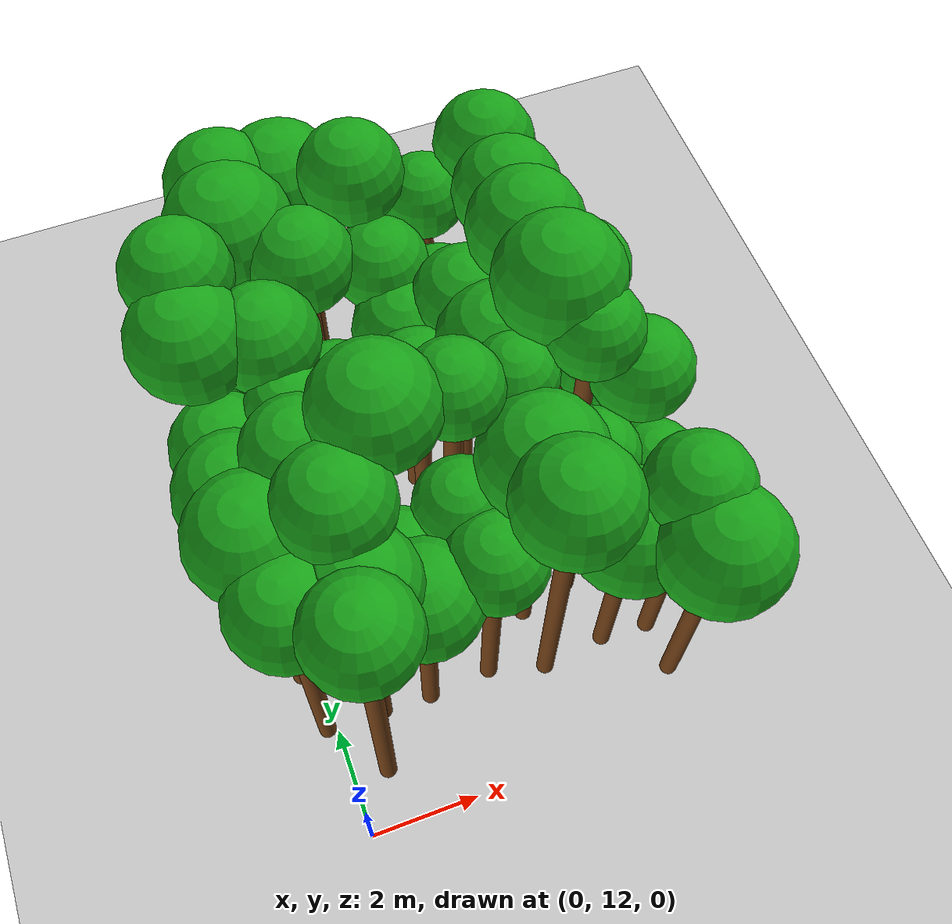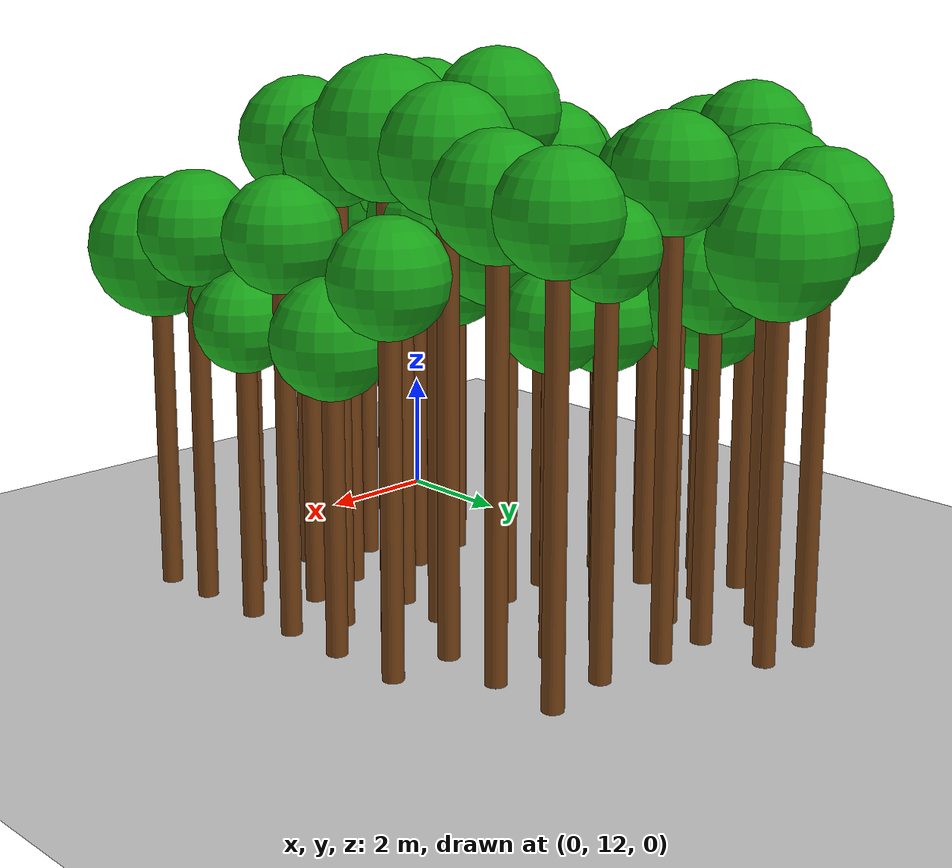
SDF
<sdf version="1.6">
 <world name="forest_world">
  <include><uri>model://sun</uri></include>
  <include><uri>model://ground_plane</uri></include>
  <model name="tree_1511_trunk">
   <static>true</static>
   <pose>-0.17 14.11 2.80 0 0 0</pose>
   <link name="link">
    <collision name="collision">
     <geometry><cylinder><radius>0.16</radius><length>5.60</length></cylinder></geometry>
    </collision>
    <visual name="visual">
     <geometry><cylinder><radius>0.16</radius><length>5.60</length></cylinder></geometry>
     <material><ambient>0.35 0.20 0.05 1</ambient><diffuse>0.45 0.25 0.08 1</diffuse></material>
    </visual>
   </link>
  </model>
  <model name="tree_1511_leaf">
   <static>true</static>
   <pose>-0.17 14.11 6.17 0 0 0</pose>
   <link name="link">
    <collision name="collision"><geometry><sphere><radius>0.94</radius></sphere></geometry></collision>
    <visual name="visual">
     <geometry><sphere><radius>0.94</radius></sphere></geometry>
     <material><ambient>0.05 0.45 0.05 1</ambient><diffuse>0.10 0.65 0.10 1</diffuse></material>
    </visual>
   </link>
  </model>
  <model name="tree_1512_trunk">
   <static>true</static>
   <pose>-0.33 15.25 2.86 0 0 0</pose>
   <link name="link">
    <collision name="collision">
     <geometry><cylinder><radius>0.16</radius><length>5.71</length></cylinder></geometry>
    </collision>
    <visual name="visual">
     <geometry><cylinder><radius>0.16</radius><length>5.71</length></cylinder></geometry>
     <material><ambient>0.35 0.20 0.05 1</ambient><diffuse>0.45 0.25 0.08 1</diffuse></material>
    </visual>
   </link>
  </model>
  <model name="tree_1512_leaf">
   <static>true</static>
   <pose>-0.33 15.25 6.33 0 0 0</pose>
   <link name="link">
    <collision name="collision"><geometry><sphere><radius>1.03</radius></sphere></geometry></collision>
    <visual name="visual">
     <geometry><sphere><radius>1.03</radius></sphere></geometry>
     <material><ambient>0.05 0.45 0.05 1</ambient><diffuse>0.10 0.65 0.10 1</diffuse></material>
    </visual>
   </link>
  </model>
  <model name="tree_1513_trunk">
   <static>true</static>
   <pose>-0.34 16.30 2.58 0 0 0</pose>
   <link name="link">
    <collision name="collision">
     <geometry><cylinder><radius>0.16</radius><length>5.17</length></cylinder></geometry>
    </collision>
    <visual name="visual">
     <geometry><cylinder><radius>0.16</radius><length>5.17</length></cylinder></geometry>
     <material><ambient>0.35 0.20 0.05 1</ambient><diffuse>0.45 0.25 0.08 1</diffuse></material>
    </visual>
   </link>
  </model>
  <model name="tree_1513_leaf">
   <static>true</static>
   <pose>-0.34 16.30 5.77 0 0 0</pose>
   <link name="link">
    <collision name="collision"><geometry><sphere><radius>1.00</radius></sphere></geometry></collision>
    <visual name="visual">
     <geometry><sphere><radius>1.00</radius></sphere></geometry>
     <material><ambient>0.05 0.45 0.05 1</ambient><diffuse>0.10 0.65 0.10 1</diffuse></material>
    </visual>
   </link>
  </model>
  <model name="tree_1514_trunk">
   <static>true</static>
   <pose>-0.30 17.37 2.39 0 0 0</pose>
   <link name="link">
    <collision name="collision">
     <geometry><cylinder><radius>0.16</radius><length>4.79</length></cylinder></geometry>
    </collision>
    <visual name="visual">
     <geometry><cylinder><radius>0.16</radius><length>4.79</length></cylinder></geometry>
     <material><ambient>0.35 0.20 0.05 1</ambient><diffuse>0.45 0.25 0.08 1</diffuse></material>
    </visual>
   </link>
  </model>
  <model name="tree_1514_leaf">
   <static>true</static>
   <pose>-0.30 17.37 5.33 0 0 0</pose>
   <link name="link">
    <collision name="collision"><geometry><sphere><radius>0.91</radius></sphere></geometry></collision>
    <visual name="visual">
     <geometry><sphere><radius>0.91</radius></sphere></geometry>
     <material><ambient>0.05 0.45 0.05 1</ambient><diffuse>0.10 0.65 0.10 1</diffuse></material>
    </visual>
   </link>
  </model>
  <model name="tree_1515_trunk">
   <static>true</static>
   <pose>-0.32 18.52 3.08 0 0 0</pose>
   <link name="link">
    <collision name="collision">
     <geometry><cylinder><radius>0.16</radius><length>6.16</length></cylinder></geometry>
    </collision>
    <visual name="visual">
     <geometry><cylinder><radius>0.16</radius><length>6.16</length></cylinder></geometry>
     <material><ambient>0.35 0.20 0.05 1</ambient><diffuse>0.45 0.25 0.08 1</diffuse></material>
    </visual>
   </link>
  </model>
  <model name="tree_1515_leaf">
   <static>true</static>
   <pose>-0.32 18.52 6.76 0 0 0</pose>
   <link name="link">
    <collision name="collision"><geometry><sphere><radius>1.00</radius></sphere></geometry></collision>
    <visual name="visual">
     <geometry><sphere><radius>1.00</radius></sphere></geometry>
     <material><ambient>0.05 0.45 0.05 1</ambient><diffuse>0.10 0.65 0.10 1</diffuse></material>
    </visual>
   </link>
  </model>
  <model name="tree_1516_trunk">
   <static>true</static>
   <pose>-0.20 19.46 3.32 0 0 0</pose>
   <link name="link">
    <collision name="collision">
     <geometry><cylinder><radius>0.16</radius><length>6.64</length></cylinder></geometry>
    </collision>
    <visual name="visual">
     <geometry><cylinder><radius>0.16</radius><length>6.64</length></cylinder></geometry>
     <material><ambient>0.35 0.20 0.05 1</ambient><diffuse>0.45 0.25 0.08 1</diffuse></material>
    </visual>
   </link>
  </model>
  <model name="tree_1516_leaf">
   <static>true</static>
   <pose>-0.20 19.46 7.17 0 0 0</pose>
   <link name="link">
    <collision name="collision"><geometry><sphere><radius>0.89</radius></sphere></geometry></collision>
    <visual name="visual">
     <geometry><sphere><radius>0.89</radius></sphere></geometry>
     <material><ambient>0.05 0.45 0.05 1</ambient><diffuse>0.10 0.65 0.10 1</diffuse></material>
    </visual>
   </link>
  </model>
  <model name="tree_1560_trunk">
   <static>true</static>
   <pose>0.64 13.03 3.34 0 0 0</pose>
   <link name="link">
    <collision name="collision">
     <geometry><cylinder><radius>0.16</radius><length>6.67</length></cylinder></geometry>
    </collision>
    <visual name="visual">
     <geometry><cylinder><radius>0.16</radius><length>6.67</length></cylinder></geometry>
     <material><ambient>0.35 0.20 0.05 1</ambient><diffuse>0.45 0.25 0.08 1</diffuse></material>
    </visual>
   </link>
  </model>
  <model name="tree_1560_leaf">
   <static>true</static>
   <pose>0.64 13.03 7.20 0 0 0</pose>
   <link name="link">
    <collision name="collision"><geometry><sphere><radius>0.88</radius></sphere></geometry></collision>
    <visual name="visual">
     <geometry><sphere><radius>0.88</radius></sphere></geometry>
     <material><ambient>0.05 0.45 0.05 1</ambient><diffuse>0.10 0.65 0.10 1</diffuse></material>
    </visual>
   </link>
  </model>
  <model name="tree_1561_trunk">
   <static>true</static>
   <pose>0.91 14.09 2.83 0 0 0</pose>
   <link name="link">
    <collision name="collision">
     <geometry><cylinder><radius>0.16</radius><length>5.66</length></cylinder></geometry>
    </collision>
    <visual name="visual">
     <geometry><cylinder><radius>0.16</radius><length>5.66</length></cylinder></geometry>
     <material><ambient>0.35 0.20 0.05 1</ambient><diffuse>0.45 0.25 0.08 1</diffuse></material>
    </visual>
   </link>
  </model>
  <model name="tree_1561_leaf">
   <static>true</static>
   <pose>0.91 14.09 6.22 0 0 0</pose>
   <link name="link">
    <collision name="collision"><geometry><sphere><radius>0.93</radius></sphere></geometry></collision>
    <visual name="visual">
     <geometry><sphere><radius>0.93</radius></sphere></geometry>
     <material><ambient>0.05 0.45 0.05 1</ambient><diffuse>0.10 0.65 0.10 1</diffuse></material>
    </visual>
   </link>
  </model>
  <model name="tree_1562_trunk">
   <static>true</static>
   <pose>0.89 15.01 3.25 0 0 0</pose>
   <link name="link">
    <collision name="collision">
     <geometry><cylinder><radius>0.16</radius><length>6.50</length></cylinder></geometry>
    </collision>
    <visual name="visual">
     <geometry><cylinder><radius>0.16</radius><length>6.50</length></cylinder></geometry>
     <material><ambient>0.35 0.20 0.05 1</ambient><diffuse>0.45 0.25 0.08 1</diffuse></material>
    </visual>
   </link>
  </model>
  <model name="tree_1562_leaf">
   <static>true</static>
   <pose>0.89 15.01 7.05 0 0 0</pose>
   <link name="link">
    <collision name="collision"><geometry><sphere><radius>0.92</radius></sphere></geometry></collision>
    <visual name="visual">
     <geometry><sphere><radius>0.92</radius></sphere></geometry>
     <material><ambient>0.05 0.45 0.05 1</ambient><diffuse>0.10 0.65 0.10 1</diffuse></material>
    </visual>
   </link>
  </model>
  <model name="tree_1563_trunk">
   <static>true</static>
   <pose>0.69 16.14 3.06 0 0 0</pose>
   <link name="link">
    <collision name="collision">
     <geometry><cylinder><radius>0.16</radius><length>6.12</length></cylinder></geometry>
    </collision>
    <visual name="visual">
     <geometry><cylinder><radius>0.16</radius><length>6.12</length></cylinder></geometry>
     <material><ambient>0.35 0.20 0.05 1</ambient><diffuse>0.45 0.25 0.08 1</diffuse></material>
    </visual>
   </link>
  </model>
  <model name="tree_1563_leaf">
   <static>true</static>
   <pose>0.69 16.14 6.66 0 0 0</pose>
   <link name="link">
    <collision name="collision"><geometry><sphere><radius>0.90</radius></sphere></geometry></collision>
    <visual name="visual">
     <geometry><sphere><radius>0.90</radius></sphere></geometry>
     <material><ambient>0.05 0.45 0.05 1</ambient><diffuse>0.10 0.65 0.10 1</diffuse></material>
    </visual>
   </link>
  </model>
  <model name="tree_1564_trunk">
   <static>true</static>
   <pose>0.82 17.37 2.78 0 0 0</pose>
   <link name="link">
    <collision name="collision">
     <geometry><cylinder><radius>0.16</radius><length>5.56</length></cylinder></geometry>
    </collision>
    <visual name="visual">
     <geometry><cylinder><radius>0.16</radius><length>5.56</length></cylinder></geometry>
     <material><ambient>0.35 0.20 0.05 1</ambient><diffuse>0.45 0.25 0.08 1</diffuse></material>
    </visual>
   </link>
  </model>
  <model name="tree_1564_leaf">
   <static>true</static>
   <pose>0.82 17.37 5.99 0 0 0</pose>
   <link name="link">
    <collision name="collision"><geometry><sphere><radius>0.71</radius></sphere></geometry></collision>
    <visual name="visual">
     <geometry><sphere><radius>0.71</radius></sphere></geometry>
     <material><ambient>0.05 0.45 0.05 1</ambient><diffuse>0.10 0.65 0.10 1</diffuse></material>
    </visual>
   </link>
  </model>
  <model name="tree_1565_trunk">
   <static>true</static>
   <pose>0.76 18.32 3.00 0 0 0</pose>
   <link name="link">
    <collision name="collision">
     <geometry><cylinder><radius>0.16</radius><length>5.99</length></cylinder></geometry>
    </collision>
    <visual name="visual">
     <geometry><cylinder><radius>0.16</radius><length>5.99</length></cylinder></geometry>
     <material><ambient>0.35 0.20 0.05 1</ambient><diffuse>0.45 0.25 0.08 1</diffuse></material>
    </visual>
   </link>
  </model>
  <model name="tree_1565_leaf">
   <static>true</static>
   <pose>0.76 18.32 6.53 0 0 0</pose>
   <link name="link">
    <collision name="collision"><geometry><sphere><radius>0.90</radius></sphere></geometry></collision>
    <visual name="visual">
     <geometry><sphere><radius>0.90</radius></sphere></geometry>
     <material><ambient>0.05 0.45 0.05 1</ambient><diffuse>0.10 0.65 0.10 1</diffuse></material>
    </visual>
   </link>
  </model>
  <model name="tree_1566_trunk">
   <static>true</static>
   <pose>0.67 19.36 2.07 0 0 0</pose>
   <link name="link">
    <collision name="collision">
     <geometry><cylinder><radius>0.16</radius><length>4.13</length></cylinder></geometry>
    </collision>
    <visual name="visual">
     <geometry><cylinder><radius>0.16</radius><length>4.13</length></cylinder></geometry>
     <material><ambient>0.35 0.20 0.05 1</ambient><diffuse>0.45 0.25 0.08 1</diffuse></material>
    </visual>
   </link>
  </model>
  <model name="tree_1566_leaf">
   <static>true</static>
   <pose>0.67 19.36 4.74 0 0 0</pose>
   <link name="link">
    <collision name="collision"><geometry><sphere><radius>1.02</radius></sphere></geometry></collision>
    <visual name="visual">
     <geometry><sphere><radius>1.02</radius></sphere></geometry>
     <material><ambient>0.05 0.45 0.05 1</ambient><diffuse>0.10 0.65 0.10 1</diffuse></material>
    </visual>
   </link>
  </model>
  <model name="tree_1567_trunk">
   <static>true</static>
   <pose>0.82 20.61 2.93 0 0 0</pose>
   <link name="link">
    <collision name="collision">
     <geometry><cylinder><radius>0.16</radius><length>5.85</length></cylinder></geometry>
    </collision>
    <visual name="visual">
     <geometry><cylinder><radius>0.16</radius><length>5.85</length></cylinder></geometry>
     <material><ambient>0.35 0.20 0.05 1</ambient><diffuse>0.45 0.25 0.08 1</diffuse></material>
    </visual>
   </link>
  </model>
  <model name="tree_1567_leaf">
   <static>true</static>
   <pose>0.82 20.61 6.50 0 0 0</pose>
   <link name="link">
    <collision name="collision"><geometry><sphere><radius>1.08</radius></sphere></geometry></collision>
    <visual name="visual">
     <geometry><sphere><radius>1.08</radius></sphere></geometry>
     <material><ambient>0.05 0.45 0.05 1</ambient><diffuse>0.10 0.65 0.10 1</diffuse></material>
    </visual>
   </link>
  </model>
  <model name="tree_1568_trunk">
   <static>true</static>
   <pose>0.93 21.59 2.91 0 0 0</pose>
   <link name="link">
    <collision name="collision">
     <geometry><cylinder><radius>0.16</radius><length>5.81</length></cylinder></geometry>
    </collision>
    <visual name="visual">
     <geometry><cylinder><radius>0.16</radius><length>5.81</length></cylinder></geometry>
     <material><ambient>0.35 0.20 0.05 1</ambient><diffuse>0.45 0.25 0.08 1</diffuse></material>
    </visual>
   </link>
  </model>
  <model name="tree_1568_leaf">
   <static>true</static>
   <pose>0.93 21.59 6.39 0 0 0</pose>
   <link name="link">
    <collision name="collision"><geometry><sphere><radius>0.96</radius></sphere></geometry></collision>
    <visual name="visual">
     <geometry><sphere><radius>0.96</radius></sphere></geometry>
     <material><ambient>0.05 0.45 0.05 1</ambient><diffuse>0.10 0.65 0.10 1</diffuse></material>
    </visual>
   </link>
  </model>
  <model name="tree_1612_trunk">
   <static>true</static>
   <pose>1.83 14.07 2.15 0 0 0</pose>
   <link name="link">
    <collision name="collision">
     <geometry><cylinder><radius>0.16</radius><length>4.30</length></cylinder></geometry>
    </collision>
    <visual name="visual">
     <geometry><cylinder><radius>0.16</radius><length>4.30</length></cylinder></geometry>
     <material><ambient>0.35 0.20 0.05 1</ambient><diffuse>0.45 0.25 0.08 1</diffuse></material>
    </visual>
   </link>
  </model>
  <model name="tree_1612_leaf">
   <static>true</static>
   <pose>1.83 14.07 4.88 0 0 0</pose>
   <link name="link">
    <collision name="collision"><geometry><sphere><radius>0.98</radius></sphere></geometry></collision>
    <visual name="visual">
     <geometry><sphere><radius>0.98</radius></sphere></geometry>
     <material><ambient>0.05 0.45 0.05 1</ambient><diffuse>0.10 0.65 0.10 1</diffuse></material>
    </visual>
   </link>
  </model>
  <model name="tree_1613_trunk">
   <static>true</static>
   <pose>1.77 14.99 2.08 0 0 0</pose>
   <link name="link">
    <collision name="collision">
     <geometry><cylinder><radius>0.16</radius><length>4.17</length></cylinder></geometry>
    </collision>
    <visual name="visual">
     <geometry><cylinder><radius>0.16</radius><length>4.17</length></cylinder></geometry>
     <material><ambient>0.35 0.20 0.05 1</ambient><diffuse>0.45 0.25 0.08 1</diffuse></material>
    </visual>
   </link>
  </model>
  <model name="tree_1613_leaf">
   <static>true</static>
   <pose>1.77 14.99 4.63 0 0 0</pose>
   <link name="link">
    <collision name="collision"><geometry><sphere><radius>0.78</radius></sphere></geometry></collision>
    <visual name="visual">
     <geometry><sphere><radius>0.78</radius></sphere></geometry>
     <material><ambient>0.05 0.45 0.05 1</ambient><diffuse>0.10 0.65 0.10 1</diffuse></material>
    </visual>
   </link>
  </model>
  <model name="tree_1614_trunk">
   <static>true</static>
   <pose>1.84 16.03 3.44 0 0 0</pose>
   <link name="link">
    <collision name="collision">
     <geometry><cylinder><radius>0.16</radius><length>6.88</length></cylinder></geometry>
    </collision>
    <visual name="visual">
     <geometry><cylinder><radius>0.16</radius><length>6.88</length></cylinder></geometry>
     <material><ambient>0.35 0.20 0.05 1</ambient><diffuse>0.45 0.25 0.08 1</diffuse></material>
    </visual>
   </link>
  </model>
  <model name="tree_1614_leaf">
   <static>true</static>
   <pose>1.84 16.03 7.48 0 0 0</pose>
   <link name="link">
    <collision name="collision"><geometry><sphere><radius>1.01</radius></sphere></geometry></collision>
    <visual name="visual">
     <geometry><sphere><radius>1.01</radius></sphere></geometry>
     <material><ambient>0.05 0.45 0.05 1</ambient><diffuse>0.10 0.65 0.10 1</diffuse></material>
    </visual>
   </link>
  </model>
  <model name="tree_1615_trunk">
   <static>true</static>
   <pose>2.01 17.24 2.14 0 0 0</pose>
   <link name="link">
    <collision name="collision">
     <geometry><cylinder><radius>0.16</radius><length>4.28</length></cylinder></geometry>
    </collision>
    <visual name="visual">
     <geometry><cylinder><radius>0.16</radius><length>4.28</length></cylinder></geometry>
     <material><ambient>0.35 0.20 0.05 1</ambient><diffuse>0.45 0.25 0.08 1</diffuse></material>
    </visual>
   </link>
  </model>
  <model name="tree_1615_leaf">
   <static>true</static>
   <pose>2.01 17.24 4.82 0 0 0</pose>
   <link name="link">
    <collision name="collision"><geometry><sphere><radius>0.90</radius></sphere></geometry></collision>
    <visual name="visual">
     <geometry><sphere><radius>0.90</radius></sphere></geometry>
     <material><ambient>0.05 0.45 0.05 1</ambient><diffuse>0.10 0.65 0.10 1</diffuse></material>
    </visual>
   </link>
  </model>
  <model name="tree_1616_trunk">
   <static>true</static>
   <pose>1.74 18.25 2.00 0 0 0</pose>
   <link name="link">
    <collision name="collision">
     <geometry><cylinder><radius>0.16</radius><length>4.01</length></cylinder></geometry>
    </collision>
    <visual name="visual">
     <geometry><cylinder><radius>0.16</radius><length>4.01</length></cylinder></geometry>
     <material><ambient>0.35 0.20 0.05 1</ambient><diffuse>0.45 0.25 0.08 1</diffuse></material>
    </visual>
   </link>
  </model>
  <model name="tree_1616_leaf">
   <static>true</static>
   <pose>1.74 18.25 4.53 0 0 0</pose>
   <link name="link">
    <collision name="collision"><geometry><sphere><radius>0.88</radius></sphere></geometry></collision>
    <visual name="visual">
     <geometry><sphere><radius>0.88</radius></sphere></geometry>
     <material><ambient>0.05 0.45 0.05 1</ambient><diffuse>0.10 0.65 0.10 1</diffuse></material>
    </visual>
   </link>
  </model>
  <model name="tree_1617_trunk">
   <static>true</static>
   <pose>1.74 19.65 2.93 0 0 0</pose>
   <link name="link">
    <collision name="collision">
     <geometry><cylinder><radius>0.16</radius><length>5.86</length></cylinder></geometry>
    </collision>
    <visual name="visual">
     <geometry><cylinder><radius>0.16</radius><length>5.86</length></cylinder></geometry>
     <material><ambient>0.35 0.20 0.05 1</ambient><diffuse>0.45 0.25 0.08 1</diffuse></material>
    </visual>
   </link>
  </model>
  <model name="tree_1617_leaf">
   <static>true</static>
   <pose>1.74 19.65 6.39 0 0 0</pose>
   <link name="link">
    <collision name="collision"><geometry><sphere><radius>0.89</radius></sphere></geometry></collision>
    <visual name="visual">
     <geometry><sphere><radius>0.89</radius></sphere></geometry>
     <material><ambient>0.05 0.45 0.05 1</ambient><diffuse>0.10 0.65 0.10 1</diffuse></material>
    </visual>
   </link>
  </model>
  <model name="tree_1618_trunk">
   <static>true</static>
   <pose>1.96 20.50 2.49 0 0 0</pose>
   <link name="link">
    <collision name="collision">
     <geometry><cylinder><radius>0.16</radius><length>4.98</length></cylinder></geometry>
    </collision>
    <visual name="visual">
     <geometry><cylinder><radius>0.16</radius><length>4.98</length></cylinder></geometry>
     <material><ambient>0.35 0.20 0.05 1</ambient><diffuse>0.45 0.25 0.08 1</diffuse></material>
    </visual>
   </link>
  </model>
  <model name="tree_1618_leaf">
   <static>true</static>
   <pose>1.96 20.50 5.46 0 0 0</pose>
   <link name="link">
    <collision name="collision"><geometry><sphere><radius>0.78</radius></sphere></geometry></collision>
    <visual name="visual">
     <geometry><sphere><radius>0.78</radius></sphere></geometry>
     <material><ambient>0.05 0.45 0.05 1</ambient><diffuse>0.10 0.65 0.10 1</diffuse></material>
    </visual>
   </link>
  </model>
  <model name="tree_1619_trunk">
   <static>true</static>
   <pose>1.94 21.64 2.73 0 0 0</pose>
   <link name="link">
    <collision name="collision">
     <geometry><cylinder><radius>0.16</radius><length>5.46</length></cylinder></geometry>
    </collision>
    <visual name="visual">
     <geometry><cylinder><radius>0.16</radius><length>5.46</length></cylinder></geometry>
     <material><ambient>0.35 0.20 0.05 1</ambient><diffuse>0.45 0.25 0.08 1</diffuse></material>
    </visual>
   </link>
  </model>
  <model name="tree_1619_leaf">
   <static>true</static>
   <pose>1.94 21.64 6.09 0 0 0</pose>
   <link name="link">
    <collision name="collision"><geometry><sphere><radius>1.04</radius></sphere></geometry></collision>
    <visual name="visual">
     <geometry><sphere><radius>1.04</radius></sphere></geometry>
     <material><ambient>0.05 0.45 0.05 1</ambient><diffuse>0.10 0.65 0.10 1</diffuse></material>
    </visual>
   </link>
  </model>
  <model name="tree_1667_trunk">
   <static>true</static>
   <pose>3.02 14.16 2.32 0 0 0</pose>
   <link name="link">
    <collision name="collision">
     <geometry><cylinder><radius>0.16</radius><length>4.65</length></cylinder></geometry>
    </collision>
    <visual name="visual">
     <geometry><cylinder><radius>0.16</radius><length>4.65</length></cylinder></geometry>
     <material><ambient>0.35 0.20 0.05 1</ambient><diffuse>0.45 0.25 0.08 1</diffuse></material>
    </visual>
   </link>
  </model>
  <model name="tree_1667_leaf">
   <static>true</static>
   <pose>3.02 14.16 5.16 0 0 0</pose>
   <link name="link">
    <collision name="collision"><geometry><sphere><radius>0.85</radius></sphere></geometry></collision>
    <visual name="visual">
     <geometry><sphere><radius>0.85</radius></sphere></geometry>
     <material><ambient>0.05 0.45 0.05 1</ambient><diffuse>0.10 0.65 0.10 1</diffuse></material>
    </visual>
   </link>
  </model>
  <model name="tree_1668_trunk">
   <static>true</static>
   <pose>2.86 15.23 2.35 0 0 0</pose>
   <link name="link">
    <collision name="collision">
     <geometry><cylinder><radius>0.16</radius><length>4.69</length></cylinder></geometry>
    </collision>
    <visual name="visual">
     <geometry><cylinder><radius>0.16</radius><length>4.69</length></cylinder></geometry>
     <material><ambient>0.35 0.20 0.05 1</ambient><diffuse>0.45 0.25 0.08 1</diffuse></material>
    </visual>
   </link>
  </model>
  <model name="tree_1668_leaf">
   <static>true</static>
   <pose>2.86 15.23 5.17 0 0 0</pose>
   <link name="link">
    <collision name="collision"><geometry><sphere><radius>0.80</radius></sphere></geometry></collision>
    <visual name="visual">
     <geometry><sphere><radius>0.80</radius></sphere></geometry>
     <material><ambient>0.05 0.45 0.05 1</ambient><diffuse>0.10 0.65 0.10 1</diffuse></material>
    </visual>
   </link>
  </model>
  <model name="tree_1669_trunk">
   <static>true</static>
   <pose>3.04 16.10 3.36 0 0 0</pose>
   <link name="link">
    <collision name="collision">
     <geometry><cylinder><radius>0.16</radius><length>6.71</length></cylinder></geometry>
    </collision>
    <visual name="visual">
     <geometry><cylinder><radius>0.16</radius><length>6.71</length></cylinder></geometry>
     <material><ambient>0.35 0.20 0.05 1</ambient><diffuse>0.45 0.25 0.08 1</diffuse></material>
    </visual>
   </link>
  </model>
  <model name="tree_1669_leaf">
   <static>true</static>
   <pose>3.04 16.10 7.18 0 0 0</pose>
   <link name="link">
    <collision name="collision"><geometry><sphere><radius>0.78</radius></sphere></geometry></collision>
    <visual name="visual">
     <geometry><sphere><radius>0.78</radius></sphere></geometry>
     <material><ambient>0.05 0.45 0.05 1</ambient><diffuse>0.10 0.65 0.10 1</diffuse></material>
    </visual>
   </link>
  </model>
  <model name="tree_1670_trunk">
   <static>true</static>
   <pose>2.91 17.36 2.53 0 0 0</pose>
   <link name="link">
    <collision name="collision">
     <geometry><cylinder><radius>0.16</radius><length>5.06</length></cylinder></geometry>
    </collision>
    <visual name="visual">
     <geometry><cylinder><radius>0.16</radius><length>5.06</length></cylinder></geometry>
     <material><ambient>0.35 0.20 0.05 1</ambient><diffuse>0.45 0.25 0.08 1</diffuse></material>
    </visual>
   </link>
  </model>
  <model name="tree_1670_leaf">
   <static>true</static>
   <pose>2.91 17.36 5.59 0 0 0</pose>
   <link name="link">
    <collision name="collision"><geometry><sphere><radius>0.88</radius></sphere></geometry></collision>
    <visual name="visual">
     <geometry><sphere><radius>0.88</radius></sphere></geometry>
     <material><ambient>0.05 0.45 0.05 1</ambient><diffuse>0.10 0.65 0.10 1</diffuse></material>
    </visual>
   </link>
  </model>
  <model name="tree_1671_trunk">
   <static>true</static>
   <pose>3.08 18.47 2.43 0 0 0</pose>
   <link name="link">
    <collision name="collision">
     <geometry><cylinder><radius>0.16</radius><length>4.87</length></cylinder></geometry>
    </collision>
    <visual name="visual">
     <geometry><cylinder><radius>0.16</radius><length>4.87</length></cylinder></geometry>
     <material><ambient>0.35 0.20 0.05 1</ambient><diffuse>0.45 0.25 0.08 1</diffuse></material>
    </visual>
   </link>
  </model>
  <model name="tree_1671_leaf">
   <static>true</static>
   <pose>3.08 18.47 5.42 0 0 0</pose>
   <link name="link">
    <collision name="collision"><geometry><sphere><radius>0.91</radius></sphere></geometry></collision>
    <visual name="visual">
     <geometry><sphere><radius>0.91</radius></sphere></geometry>
     <material><ambient>0.05 0.45 0.05 1</ambient><diffuse>0.10 0.65 0.10 1</diffuse></material>
    </visual>
   </link>
  </model>
  <model name="tree_1672_trunk">
   <static>true</static>
   <pose>2.99 19.41 2.77 0 0 0</pose>
   <link name="link">
    <collision name="collision">
     <geometry><cylinder><radius>0.16</radius><length>5.54</length></cylinder></geometry>
    </collision>
    <visual name="visual">
     <geometry><cylinder><radius>0.16</radius><length>5.54</length></cylinder></geometry>
     <material><ambient>0.35 0.20 0.05 1</ambient><diffuse>0.45 0.25 0.08 1</diffuse></material>
    </visual>
   </link>
  </model>
  <model name="tree_1672_leaf">
   <static>true</static>
   <pose>2.99 19.41 6.02 0 0 0</pose>
   <link name="link">
    <collision name="collision"><geometry><sphere><radius>0.80</radius></sphere></geometry></collision>
    <visual name="visual">
     <geometry><sphere><radius>0.80</radius></sphere></geometry>
     <material><ambient>0.05 0.45 0.05 1</ambient><diffuse>0.10 0.65 0.10 1</diffuse></material>
    </visual>
   </link>
  </model>
  <model name="tree_1673_trunk">
   <static>true</static>
   <pose>2.91 20.54 3.27 0 0 0</pose>
   <link name="link">
    <collision name="collision">
     <geometry><cylinder><radius>0.16</radius><length>6.54</length></cylinder></geometry>
    </collision>
    <visual name="visual">
     <geometry><cylinder><radius>0.16</radius><length>6.54</length></cylinder></geometry>
     <material><ambient>0.35 0.20 0.05 1</ambient><diffuse>0.45 0.25 0.08 1</diffuse></material>
    </visual>
   </link>
  </model>
  <model name="tree_1673_leaf">
   <static>true</static>
   <pose>2.91 20.54 7.06 0 0 0</pose>
   <link name="link">
    <collision name="collision"><geometry><sphere><radius>0.87</radius></sphere></geometry></collision>
    <visual name="visual">
     <geometry><sphere><radius>0.87</radius></sphere></geometry>
     <material><ambient>0.05 0.45 0.05 1</ambient><diffuse>0.10 0.65 0.10 1</diffuse></material>
    </visual>
   </link>
  </model>
  <model name="tree_1722_trunk">
   <static>true</static>
   <pose>4.05 13.87 3.22 0 0 0</pose>
   <link name="link">
    <collision name="collision">
     <geometry><cylinder><radius>0.16</radius><length>6.45</length></cylinder></geometry>
    </collision>
    <visual name="visual">
     <geometry><cylinder><radius>0.16</radius><length>6.45</length></cylinder></geometry>
     <material><ambient>0.35 0.20 0.05 1</ambient><diffuse>0.45 0.25 0.08 1</diffuse></material>
    </visual>
   </link>
  </model>
  <model name="tree_1722_leaf">
   <static>true</static>
   <pose>4.05 13.87 7.04 0 0 0</pose>
   <link name="link">
    <collision name="collision"><geometry><sphere><radius>0.99</radius></sphere></geometry></collision>
    <visual name="visual">
     <geometry><sphere><radius>0.99</radius></sphere></geometry>
     <material><ambient>0.05 0.45 0.05 1</ambient><diffuse>0.10 0.65 0.10 1</diffuse></material>
    </visual>
   </link>
  </model>
  <model name="tree_1723_trunk">
   <static>true</static>
   <pose>4.05 15.01 2.86 0 0 0</pose>
   <link name="link">
    <collision name="collision">
     <geometry><cylinder><radius>0.16</radius><length>5.73</length></cylinder></geometry>
    </collision>
    <visual name="visual">
     <geometry><cylinder><radius>0.16</radius><length>5.73</length></cylinder></geometry>
     <material><ambient>0.35 0.20 0.05 1</ambient><diffuse>0.45 0.25 0.08 1</diffuse></material>
    </visual>
   </link>
  </model>
  <model name="tree_1723_leaf">
   <static>true</static>
   <pose>4.05 15.01 6.35 0 0 0</pose>
   <link name="link">
    <collision name="collision"><geometry><sphere><radius>1.04</radius></sphere></geometry></collision>
    <visual name="visual">
     <geometry><sphere><radius>1.04</radius></sphere></geometry>
     <material><ambient>0.05 0.45 0.05 1</ambient><diffuse>0.10 0.65 0.10 1</diffuse></material>
    </visual>
   </link>
  </model>
  <model name="tree_1724_trunk">
   <static>true</static>
   <pose>4.10 16.32 3.10 0 0 0</pose>
   <link name="link">
    <collision name="collision">
     <geometry><cylinder><radius>0.16</radius><length>6.20</length></cylinder></geometry>
    </collision>
    <visual name="visual">
     <geometry><cylinder><radius>0.16</radius><length>6.20</length></cylinder></geometry>
     <material><ambient>0.35 0.20 0.05 1</ambient><diffuse>0.45 0.25 0.08 1</diffuse></material>
    </visual>
   </link>
  </model>
  <model name="tree_1724_leaf">
   <static>true</static>
   <pose>4.10 16.32 6.62 0 0 0</pose>
   <link name="link">
    <collision name="collision"><geometry><sphere><radius>0.70</radius></sphere></geometry></collision>
    <visual name="visual">
     <geometry><sphere><radius>0.70</radius></sphere></geometry>
     <material><ambient>0.05 0.45 0.05 1</ambient><diffuse>0.10 0.65 0.10 1</diffuse></material>
    </visual>
   </link>
  </model>
  <model name="tree_1725_trunk">
   <static>true</static>
   <pose>4.22 17.23 2.76 0 0 0</pose>
   <link name="link">
    <collision name="collision">
     <geometry><cylinder><radius>0.16</radius><length>5.51</length></cylinder></geometry>
    </collision>
    <visual name="visual">
     <geometry><cylinder><radius>0.16</radius><length>5.51</length></cylinder></geometry>
     <material><ambient>0.35 0.20 0.05 1</ambient><diffuse>0.45 0.25 0.08 1</diffuse></material>
    </visual>
   </link>
  </model>
  <model name="tree_1725_leaf">
   <static>true</static>
   <pose>4.22 17.23 6.14 0 0 0</pose>
   <link name="link">
    <collision name="collision"><geometry><sphere><radius>1.04</radius></sphere></geometry></collision>
    <visual name="visual">
     <geometry><sphere><radius>1.04</radius></sphere></geometry>
     <material><ambient>0.05 0.45 0.05 1</ambient><diffuse>0.10 0.65 0.10 1</diffuse></material>
    </visual>
   </link>
  </model>
  <model name="tree_1726_trunk">
   <static>true</static>
   <pose>4.06 18.30 2.71 0 0 0</pose>
   <link name="link">
    <collision name="collision">
     <geometry><cylinder><radius>0.16</radius><length>5.42</length></cylinder></geometry>
    </collision>
    <visual name="visual">
     <geometry><cylinder><radius>0.16</radius><length>5.42</length></cylinder></geometry>
     <material><ambient>0.35 0.20 0.05 1</ambient><diffuse>0.45 0.25 0.08 1</diffuse></material>
    </visual>
   </link>
  </model>
  <model name="tree_1726_leaf">
   <static>true</static>
   <pose>4.06 18.30 5.97 0 0 0</pose>
   <link name="link">
    <collision name="collision"><geometry><sphere><radius>0.92</radius></sphere></geometry></collision>
    <visual name="visual">
     <geometry><sphere><radius>0.92</radius></sphere></geometry>
     <material><ambient>0.05 0.45 0.05 1</ambient><diffuse>0.10 0.65 0.10 1</diffuse></material>
    </visual>
   </link>
  </model>
  <model name="tree_1727_trunk">
   <static>true</static>
   <pose>3.98 19.35 2.28 0 0 0</pose>
   <link name="link">
    <collision name="collision">
     <geometry><cylinder><radius>0.16</radius><length>4.55</length></cylinder></geometry>
    </collision>
    <visual name="visual">
     <geometry><cylinder><radius>0.16</radius><length>4.55</length></cylinder></geometry>
     <material><ambient>0.35 0.20 0.05 1</ambient><diffuse>0.45 0.25 0.08 1</diffuse></material>
    </visual>
   </link>
  </model>
  <model name="tree_1727_leaf">
   <static>true</static>
   <pose>3.98 19.35 5.00 0 0 0</pose>
   <link name="link">
    <collision name="collision"><geometry><sphere><radius>0.76</radius></sphere></geometry></collision>
    <visual name="visual">
     <geometry><sphere><radius>0.76</radius></sphere></geometry>
     <material><ambient>0.05 0.45 0.05 1</ambient><diffuse>0.10 0.65 0.10 1</diffuse></material>
    </visual>
   </link>
  </model>
  <model name="tree_1728_trunk">
   <static>true</static>
   <pose>4.08 20.43 2.86 0 0 0</pose>
   <link name="link">
    <collision name="collision">
     <geometry><cylinder><radius>0.16</radius><length>5.72</length></cylinder></geometry>
    </collision>
    <visual name="visual">
     <geometry><cylinder><radius>0.16</radius><length>5.72</length></cylinder></geometry>
     <material><ambient>0.35 0.20 0.05 1</ambient><diffuse>0.45 0.25 0.08 1</diffuse></material>
    </visual>
   </link>
  </model>
  <model name="tree_1728_leaf">
   <static>true</static>
   <pose>4.08 20.43 6.16 0 0 0</pose>
   <link name="link">
    <collision name="collision"><geometry><sphere><radius>0.73</radius></sphere></geometry></collision>
    <visual name="visual">
     <geometry><sphere><radius>0.73</radius></sphere></geometry>
     <material><ambient>0.05 0.45 0.05 1</ambient><diffuse>0.10 0.65 0.10 1</diffuse></material>
    </visual>
   </link>
  </model>
  <model name="tree_1777_trunk">
   <static>true</static>
   <pose>5.27 14.02 2.11 0 0 0</pose>
   <link name="link">
    <collision name="collision">
     <geometry><cylinder><radius>0.16</radius><length>4.21</length></cylinder></geometry>
    </collision>
    <visual name="visual">
     <geometry><cylinder><radius>0.16</radius><length>4.21</length></cylinder></geometry>
     <material><ambient>0.35 0.20 0.05 1</ambient><diffuse>0.45 0.25 0.08 1</diffuse></material>
    </visual>
   </link>
  </model>
  <model name="tree_1777_leaf">
   <static>true</static>
   <pose>5.27 14.02 4.85 0 0 0</pose>
   <link name="link">
    <collision name="collision"><geometry><sphere><radius>1.07</radius></sphere></geometry></collision>
    <visual name="visual">
     <geometry><sphere><radius>1.07</radius></sphere></geometry>
     <material><ambient>0.05 0.45 0.05 1</ambient><diffuse>0.10 0.65 0.10 1</diffuse></material>
    </visual>
   </link>
  </model>
  <model name="tree_1778_trunk">
   <static>true</static>
   <pose>5.05 15.28 2.40 0 0 0</pose>
   <link name="link">
    <collision name="collision">
     <geometry><cylinder><radius>0.16</radius><length>4.81</length></cylinder></geometry>
    </collision>
    <visual name="visual">
     <geometry><cylinder><radius>0.16</radius><length>4.81</length></cylinder></geometry>
     <material><ambient>0.35 0.20 0.05 1</ambient><diffuse>0.45 0.25 0.08 1</diffuse></material>
    </visual>
   </link>
  </model>
  <model name="tree_1778_leaf">
   <static>true</static>
   <pose>5.05 15.28 5.29 0 0 0</pose>
   <link name="link">
    <collision name="collision"><geometry><sphere><radius>0.80</radius></sphere></geometry></collision>
    <visual name="visual">
     <geometry><sphere><radius>0.80</radius></sphere></geometry>
     <material><ambient>0.05 0.45 0.05 1</ambient><diffuse>0.10 0.65 0.10 1</diffuse></material>
    </visual>
   </link>
  </model>
  <model name="tree_1779_trunk">
   <static>true</static>
   <pose>5.36 16.35 3.34 0 0 0</pose>
   <link name="link">
    <collision name="collision">
     <geometry><cylinder><radius>0.16</radius><length>6.68</length></cylinder></geometry>
    </collision>
    <visual name="visual">
     <geometry><cylinder><radius>0.16</radius><length>6.68</length></cylinder></geometry>
     <material><ambient>0.35 0.20 0.05 1</ambient><diffuse>0.45 0.25 0.08 1</diffuse></material>
    </visual>
   </link>
  </model>
  <model name="tree_1779_leaf">
   <static>true</static>
   <pose>5.36 16.35 7.15 0 0 0</pose>
   <link name="link">
    <collision name="collision"><geometry><sphere><radius>0.78</radius></sphere></geometry></collision>
    <visual name="visual">
     <geometry><sphere><radius>0.78</radius></sphere></geometry>
     <material><ambient>0.05 0.45 0.05 1</ambient><diffuse>0.10 0.65 0.10 1</diffuse></material>
    </visual>
   </link>
  </model>
  <model name="tree_1780_trunk">
   <static>true</static>
   <pose>5.09 17.14 3.46 0 0 0</pose>
   <link name="link">
    <collision name="collision">
     <geometry><cylinder><radius>0.16</radius><length>6.92</length></cylinder></geometry>
    </collision>
    <visual name="visual">
     <geometry><cylinder><radius>0.16</radius><length>6.92</length></cylinder></geometry>
     <material><ambient>0.35 0.20 0.05 1</ambient><diffuse>0.45 0.25 0.08 1</diffuse></material>
    </visual>
   </link>
  </model>
  <model name="tree_1780_leaf">
   <static>true</static>
   <pose>5.09 17.14 7.54 0 0 0</pose>
   <link name="link">
    <collision name="collision"><geometry><sphere><radius>1.04</radius></sphere></geometry></collision>
    <visual name="visual">
     <geometry><sphere><radius>1.04</radius></sphere></geometry>
     <material><ambient>0.05 0.45 0.05 1</ambient><diffuse>0.10 0.65 0.10 1</diffuse></material>
    </visual>
   </link>
  </model>
  <model name="tree_1781_trunk">
   <static>true</static>
   <pose>5.05 18.36 3.38 0 0 0</pose>
   <link name="link">
    <collision name="collision">
     <geometry><cylinder><radius>0.16</radius><length>6.77</length></cylinder></geometry>
    </collision>
    <visual name="visual">
     <geometry><cylinder><radius>0.16</radius><length>6.77</length></cylinder></geometry>
     <material><ambient>0.35 0.20 0.05 1</ambient><diffuse>0.45 0.25 0.08 1</diffuse></material>
    </visual>
   </link>
  </model>
  <model name="tree_1781_leaf">
   <static>true</static>
   <pose>5.05 18.36 7.34 0 0 0</pose>
   <link name="link">
    <collision name="collision"><geometry><sphere><radius>0.95</radius></sphere></geometry></collision>
    <visual name="visual">
     <geometry><sphere><radius>0.95</radius></sphere></geometry>
     <material><ambient>0.05 0.45 0.05 1</ambient><diffuse>0.10 0.65 0.10 1</diffuse></material>
    </visual>
   </link>
  </model>
  <model name="tree_1782_trunk">
   <static>true</static>
   <pose>5.20 19.49 3.15 0 0 0</pose>
   <link name="link">
    <collision name="collision">
     <geometry><cylinder><radius>0.16</radius><length>6.31</length></cylinder></geometry>
    </collision>
    <visual name="visual">
     <geometry><cylinder><radius>0.16</radius><length>6.31</length></cylinder></geometry>
     <material><ambient>0.35 0.20 0.05 1</ambient><diffuse>0.45 0.25 0.08 1</diffuse></material>
    </visual>
   </link>
  </model>
  <model name="tree_1782_leaf">
   <static>true</static>
   <pose>5.20 19.49 6.86 0 0 0</pose>
   <link name="link">
    <collision name="collision"><geometry><sphere><radius>0.91</radius></sphere></geometry></collision>
    <visual name="visual">
     <geometry><sphere><radius>0.91</radius></sphere></geometry>
     <material><ambient>0.05 0.45 0.05 1</ambient><diffuse>0.10 0.65 0.10 1</diffuse></material>
    </visual>
   </link>
  </model>
  <model name="tree_1783_trunk">
   <static>true</static>
   <pose>5.24 20.63 3.14 0 0 0</pose>
   <link name="link">
    <collision name="collision">
     <geometry><cylinder><radius>0.16</radius><length>6.27</length></cylinder></geometry>
    </collision>
    <visual name="visual">
     <geometry><cylinder><radius>0.16</radius><length>6.27</length></cylinder></geometry>
     <material><ambient>0.35 0.20 0.05 1</ambient><diffuse>0.45 0.25 0.08 1</diffuse></material>
    </visual>
   </link>
  </model>
  <model name="tree_1783_leaf">
   <static>true</static>
   <pose>5.24 20.63 6.79 0 0 0</pose>
   <link name="link">
    <collision name="collision"><geometry><sphere><radius>0.86</radius></sphere></geometry></collision>
    <visual name="visual">
     <geometry><sphere><radius>0.86</radius></sphere></geometry>
     <material><ambient>0.05 0.45 0.05 1</ambient><diffuse>0.10 0.65 0.10 1</diffuse></material>
    </visual>
   </link>
  </model>
  <model name="tree_1831_trunk">
   <static>true</static>
   <pose>6.23 13.05 2.41 0 0 0</pose>
   <link name="link">
    <collision name="collision">
     <geometry><cylinder><radius>0.16</radius><length>4.82</length></cylinder></geometry>
    </collision>
    <visual name="visual">
     <geometry><cylinder><radius>0.16</radius><length>4.82</length></cylinder></geometry>
     <material><ambient>0.35 0.20 0.05 1</ambient><diffuse>0.45 0.25 0.08 1</diffuse></material>
    </visual>
   </link>
  </model>
  <model name="tree_1831_leaf">
   <static>true</static>
   <pose>6.23 13.05 5.47 0 0 0</pose>
   <link name="link">
    <collision name="collision"><geometry><sphere><radius>1.09</radius></sphere></geometry></collision>
    <visual name="visual">
     <geometry><sphere><radius>1.09</radius></sphere></geometry>
     <material><ambient>0.05 0.45 0.05 1</ambient><diffuse>0.10 0.65 0.10 1</diffuse></material>
    </visual>
   </link>
  </model>
  <model name="tree_1832_trunk">
   <static>true</static>
   <pose>6.18 13.97 2.67 0 0 0</pose>
   <link name="link">
    <collision name="collision">
     <geometry><cylinder><radius>0.16</radius><length>5.34</length></cylinder></geometry>
    </collision>
    <visual name="visual">
     <geometry><cylinder><radius>0.16</radius><length>5.34</length></cylinder></geometry>
     <material><ambient>0.35 0.20 0.05 1</ambient><diffuse>0.45 0.25 0.08 1</diffuse></material>
    </visual>
   </link>
  </model>
  <model name="tree_1832_leaf">
   <static>true</static>
   <pose>6.18 13.97 5.87 0 0 0</pose>
   <link name="link">
    <collision name="collision"><geometry><sphere><radius>0.89</radius></sphere></geometry></collision>
    <visual name="visual">
     <geometry><sphere><radius>0.89</radius></sphere></geometry>
     <material><ambient>0.05 0.45 0.05 1</ambient><diffuse>0.10 0.65 0.10 1</diffuse></material>
    </visual>
   </link>
  </model>
  <model name="tree_1833_trunk">
   <static>true</static>
   <pose>6.14 15.11 2.07 0 0 0</pose>
   <link name="link">
    <collision name="collision">
     <geometry><cylinder><radius>0.16</radius><length>4.14</length></cylinder></geometry>
    </collision>
    <visual name="visual">
     <geometry><cylinder><radius>0.16</radius><length>4.14</length></cylinder></geometry>
     <material><ambient>0.35 0.20 0.05 1</ambient><diffuse>0.45 0.25 0.08 1</diffuse></material>
    </visual>
   </link>
  </model>
  <model name="tree_1833_leaf">
   <static>true</static>
   <pose>6.14 15.11 4.61 0 0 0</pose>
   <link name="link">
    <collision name="collision"><geometry><sphere><radius>0.77</radius></sphere></geometry></collision>
    <visual name="visual">
     <geometry><sphere><radius>0.77</radius></sphere></geometry>
     <material><ambient>0.05 0.45 0.05 1</ambient><diffuse>0.10 0.65 0.10 1</diffuse></material>
    </visual>
   </link>
  </model>
  <model name="tree_1834_trunk">
   <static>true</static>
   <pose>6.16 16.09 2.76 0 0 0</pose>
   <link name="link">
    <collision name="collision">
     <geometry><cylinder><radius>0.16</radius><length>5.53</length></cylinder></geometry>
    </collision>
    <visual name="visual">
     <geometry><cylinder><radius>0.16</radius><length>5.53</length></cylinder></geometry>
     <material><ambient>0.35 0.20 0.05 1</ambient><diffuse>0.45 0.25 0.08 1</diffuse></material>
    </visual>
   </link>
  </model>
  <model name="tree_1834_leaf">
   <static>true</static>
   <pose>6.16 16.09 6.04 0 0 0</pose>
   <link name="link">
    <collision name="collision"><geometry><sphere><radius>0.86</radius></sphere></geometry></collision>
    <visual name="visual">
     <geometry><sphere><radius>0.86</radius></sphere></geometry>
     <material><ambient>0.05 0.45 0.05 1</ambient><diffuse>0.10 0.65 0.10 1</diffuse></material>
    </visual>
   </link>
  </model>
  <model name="tree_1835_trunk">
   <static>true</static>
   <pose>6.16 17.17 2.09 0 0 0</pose>
   <link name="link">
    <collision name="collision">
     <geometry><cylinder><radius>0.16</radius><length>4.18</length></cylinder></geometry>
    </collision>
    <visual name="visual">
     <geometry><cylinder><radius>0.16</radius><length>4.18</length></cylinder></geometry>
     <material><ambient>0.35 0.20 0.05 1</ambient><diffuse>0.45 0.25 0.08 1</diffuse></material>
    </visual>
   </link>
  </model>
  <model name="tree_1835_leaf">
   <static>true</static>
   <pose>6.16 17.17 4.71 0 0 0</pose>
   <link name="link">
    <collision name="collision"><geometry><sphere><radius>0.88</radius></sphere></geometry></collision>
    <visual name="visual">
     <geometry><sphere><radius>0.88</radius></sphere></geometry>
     <material><ambient>0.05 0.45 0.05 1</ambient><diffuse>0.10 0.65 0.10 1</diffuse></material>
    </visual>
   </link>
  </model>
  <model name="tree_1836_trunk">
   <static>true</static>
   <pose>6.15 18.40 2.62 0 0 0</pose>
   <link name="link">
    <collision name="collision">
     <geometry><cylinder><radius>0.16</radius><length>5.24</length></cylinder></geometry>
    </collision>
    <visual name="visual">
     <geometry><cylinder><radius>0.16</radius><length>5.24</length></cylinder></geometry>
     <material><ambient>0.35 0.20 0.05 1</ambient><diffuse>0.45 0.25 0.08 1</diffuse></material>
    </visual>
   </link>
  </model>
  <model name="tree_1836_leaf">
   <static>true</static>
   <pose>6.15 18.40 5.75 0 0 0</pose>
   <link name="link">
    <collision name="collision"><geometry><sphere><radius>0.85</radius></sphere></geometry></collision>
    <visual name="visual">
     <geometry><sphere><radius>0.85</radius></sphere></geometry>
     <material><ambient>0.05 0.45 0.05 1</ambient><diffuse>0.10 0.65 0.10 1</diffuse></material>
    </visual>
   </link>
  </model>
 </world>
</sdf>
